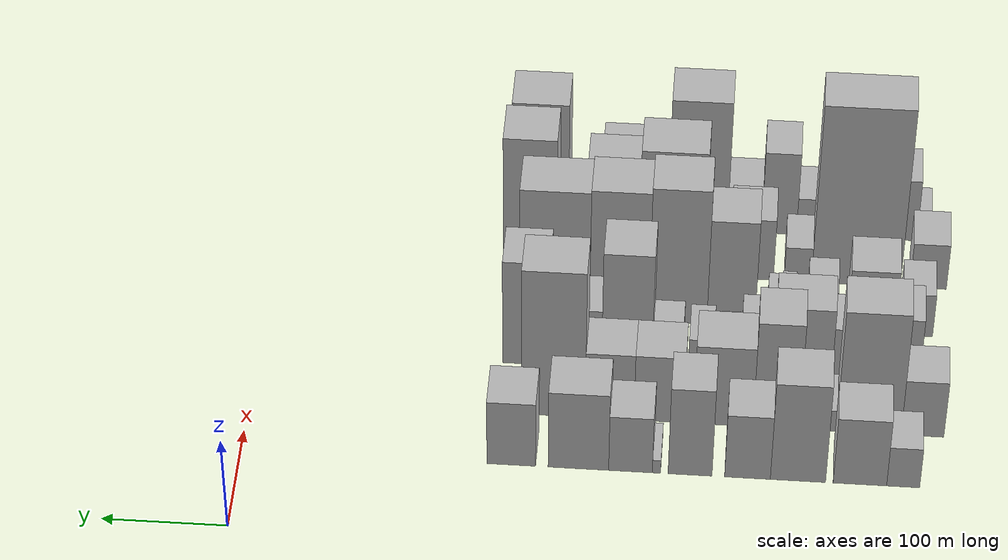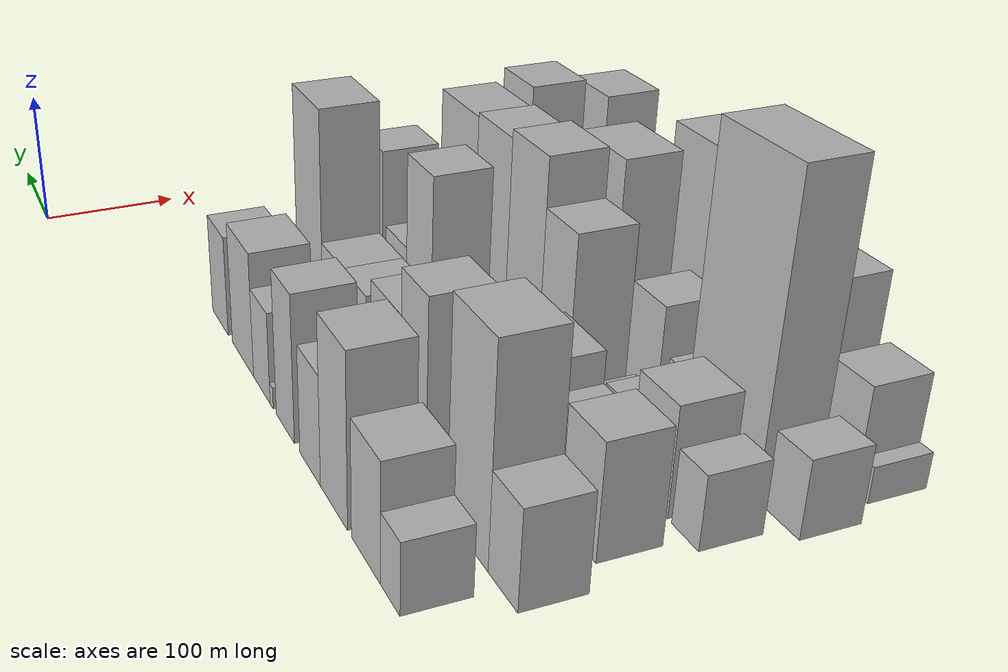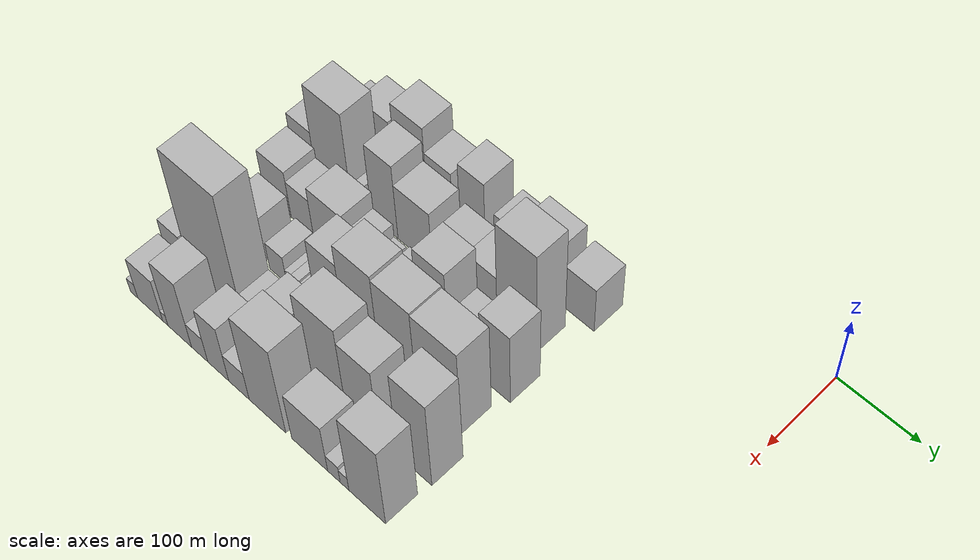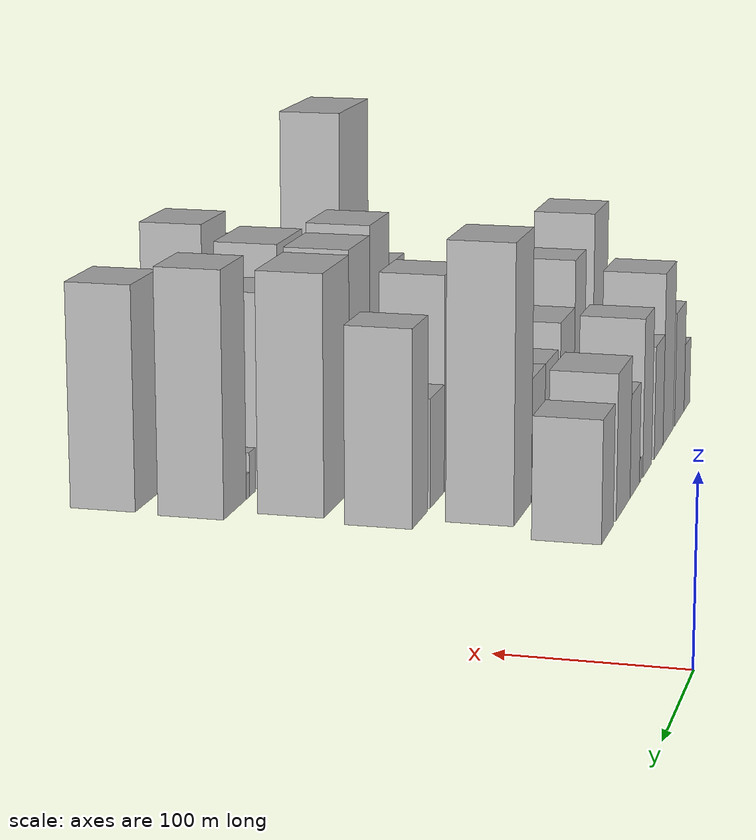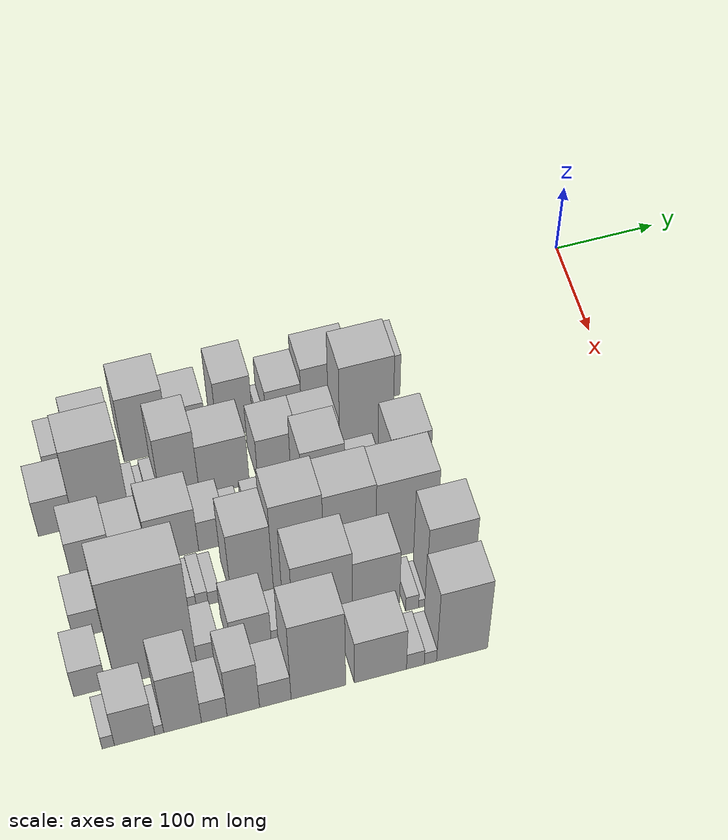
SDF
<sdf version="1.6">
 <world name="default">
  <model name="building_11">
   <static>1</static>
   <pose>100.0000 -527.0309 0 0.000000 0.000000 0.000000</pose>
   <link name="link">
    <pose>0 0 22.50 0 0 0</pose>
    <collision name="collision"><geometry><box><size>40.0000 26.0288 45.0000</size></box></geometry></collision>
    <visual name="visual">
     <cast_shadows>0</cast_shadows>
     <geometry><box><size>40.0000 26.0288 45.0000</size></box></geometry>
     <material>
      <script>
       <uri>model://HANNAS_wall/materials/scripts</uri>
       <uri>model://HANNAS_wall/materials/textures</uri>
       <name>vrc/HANNAS_wall</name>
      </script>
     </material>
    </visual>
   </link>
  </model>
  <model name="building_12">
   <static>1</static>
   <pose>100.0000 -492.8909 0 0.000000 0.000000 0.000000</pose>
   <link name="link">
    <pose>0 0 37.50 0 0 0</pose>
    <collision name="collision"><geometry><box><size>40.0000 42.2512 75.0000</size></box></geometry></collision>
    <visual name="visual">
     <cast_shadows>0</cast_shadows>
     <geometry><box><size>40.0000 42.2512 75.0000</size></box></geometry>
     <material>
      <script>
       <uri>model://HANNAS_wall/materials/scripts</uri>
       <uri>model://HANNAS_wall/materials/textures</uri>
       <name>vrc/HANNAS_wall</name>
      </script>
     </material>
    </visual>
   </link>
  </model>
  <model name="building_13">
   <static>1</static>
   <pose>100.0000 -443.9070 0 0.000000 0.000000 0.000000</pose>
   <link name="link">
    <pose>0 0 55.50 0 0 0</pose>
    <collision name="collision"><geometry><box><size>40.0000 43.7164 111.0000</size></box></geometry></collision>
    <visual name="visual">
     <cast_shadows>0</cast_shadows>
     <geometry><box><size>40.0000 43.7164 111.0000</size></box></geometry>
     <material>
      <script>
       <uri>model://HANNAS_wall/materials/scripts</uri>
       <uri>model://HANNAS_wall/materials/textures</uri>
       <name>vrc/HANNAS_wall</name>
      </script>
     </material>
    </visual>
   </link>
  </model>
  <model name="building_14">
   <static>1</static>
   <pose>100.0000 -403.9635 0 0.000000 0.000000 0.000000</pose>
   <link name="link">
    <pose>0 0 36.00 0 0 0</pose>
    <collision name="collision"><geometry><box><size>40.0000 36.1706 72.0000</size></box></geometry></collision>
    <visual name="visual">
     <cast_shadows>0</cast_shadows>
     <geometry><box><size>40.0000 36.1706 72.0000</size></box></geometry>
     <material>
      <script>
       <uri>model://HANNAS_wall/materials/scripts</uri>
       <uri>model://HANNAS_wall/materials/textures</uri>
       <name>vrc/HANNAS_wall</name>
      </script>
     </material>
    </visual>
   </link>
  </model>
  <model name="building_15">
   <static>1</static>
   <pose>100.0000 -358.4672 0 0.000000 0.000000 0.000000</pose>
   <link name="link">
    <pose>0 0 49.50 0 0 0</pose>
    <collision name="collision"><geometry><box><size>40.0000 34.8221 99.0000</size></box></geometry></collision>
    <visual name="visual">
     <cast_shadows>0</cast_shadows>
     <geometry><box><size>40.0000 34.8221 99.0000</size></box></geometry>
     <material>
      <script>
       <uri>model://HANNAS_wall/materials/scripts</uri>
       <uri>model://HANNAS_wall/materials/textures</uri>
       <name>vrc/HANNAS_wall</name>
      </script>
     </material>
    </visual>
   </link>
  </model>
  <model name="building_16">
   <static>1</static>
   <pose>100.0000 -331.7835 0 0.000000 0.000000 0.000000</pose>
   <link name="link">
    <pose>0 0 7.50 0 0 0</pose>
    <collision name="collision"><geometry><box><size>40.0000 6.5454 15.0000</size></box></geometry></collision>
    <visual name="visual">
     <cast_shadows>0</cast_shadows>
     <geometry><box><size>40.0000 6.5454 15.0000</size></box></geometry>
     <material>
      <script>
       <uri>model://HANNAS_wall/materials/scripts</uri>
       <uri>model://HANNAS_wall/materials/textures</uri>
       <name>vrc/HANNAS_wall</name>
      </script>
     </material>
    </visual>
   </link>
  </model>
  <model name="building_17">
   <static>1</static>
   <pose>100.0000 -311.1654 0 0.000000 0.000000 0.000000</pose>
   <link name="link">
    <pose>0 0 31.50 0 0 0</pose>
    <collision name="collision"><geometry><box><size>40.0000 34.6909 63.0000</size></box></geometry></collision>
    <visual name="visual">
     <cast_shadows>0</cast_shadows>
     <geometry><box><size>40.0000 34.6909 63.0000</size></box></geometry>
     <material>
      <script>
       <uri>model://HANNAS_wall/materials/scripts</uri>
       <uri>model://HANNAS_wall/materials/textures</uri>
       <name>vrc/HANNAS_wall</name>
      </script>
     </material>
    </visual>
   </link>
  </model>
  <model name="building_18">
   <static>1</static>
   <pose>100.0000 -269.7449 0 0.000000 0.000000 0.000000</pose>
   <link name="link">
    <pose>0 0 43.50 0 0 0</pose>
    <collision name="collision"><geometry><box><size>40.0000 48.1501 87.0000</size></box></geometry></collision>
    <visual name="visual">
     <cast_shadows>0</cast_shadows>
     <geometry><box><size>40.0000 48.1501 87.0000</size></box></geometry>
     <material>
      <script>
       <uri>model://HANNAS_wall/materials/scripts</uri>
       <uri>model://HANNAS_wall/materials/textures</uri>
       <name>vrc/HANNAS_wall</name>
      </script>
     </material>
    </visual>
   </link>
  </model>
  <model name="building_19">
   <static>1</static>
   <pose>100.0000 -216.3100 0 0.000000 0.000000 0.000000</pose>
   <link name="link">
    <pose>0 0 36.00 0 0 0</pose>
    <collision name="collision"><geometry><box><size>40.0000 38.7197 72.0000</size></box></geometry></collision>
    <visual name="visual">
     <cast_shadows>0</cast_shadows>
     <geometry><box><size>40.0000 38.7197 72.0000</size></box></geometry>
     <material>
      <script>
       <uri>model://HANNAS_wall/materials/scripts</uri>
       <uri>model://HANNAS_wall/materials/textures</uri>
       <name>vrc/HANNAS_wall</name>
      </script>
     </material>
    </visual>
   </link>
  </model>
  <model name="building_64">
   <static>1</static>
   <pose>155.0000 -542.1429 0 0.000000 0.000000 0.000000</pose>
   <link name="link">
    <pose>0 0 31.50 0 0 0</pose>
    <collision name="collision"><geometry><box><size>40.0000 34.1068 63.0000</size></box></geometry></collision>
    <visual name="visual">
     <cast_shadows>0</cast_shadows>
     <geometry><box><size>40.0000 34.1068 63.0000</size></box></geometry>
     <material>
      <script>
       <uri>model://HANNAS_wall/materials/scripts</uri>
       <uri>model://HANNAS_wall/materials/textures</uri>
       <name>vrc/HANNAS_wall</name>
      </script>
     </material>
    </visual>
   </link>
  </model>
  <model name="building_65">
   <static>1</static>
   <pose>155.0000 -499.2032 0 0.000000 0.000000 0.000000</pose>
   <link name="link">
    <pose>0 0 69.00 0 0 0</pose>
    <collision name="collision"><geometry><box><size>40.0000 51.7726 138.0000</size></box></geometry></collision>
    <visual name="visual">
     <cast_shadows>0</cast_shadows>
     <geometry><box><size>40.0000 51.7726 138.0000</size></box></geometry>
     <material>
      <script>
       <uri>model://HANNAS_wall/materials/scripts</uri>
       <uri>model://HANNAS_wall/materials/textures</uri>
       <name>vrc/HANNAS_wall</name>
      </script>
     </material>
    </visual>
   </link>
  </model>
  <model name="building_66">
   <static>1</static>
   <pose>155.0000 -467.5959 0 0.000000 0.000000 0.000000</pose>
   <link name="link">
    <pose>0 0 12.00 0 0 0</pose>
    <collision name="collision"><geometry><box><size>40.0000 11.4419 24.0000</size></box></geometry></collision>
    <visual name="visual">
     <cast_shadows>0</cast_shadows>
     <geometry><box><size>40.0000 11.4419 24.0000</size></box></geometry>
     <material>
      <script>
       <uri>model://HANNAS_wall/materials/scripts</uri>
       <uri>model://HANNAS_wall/materials/textures</uri>
       <name>vrc/HANNAS_wall</name>
      </script>
     </material>
    </visual>
   </link>
  </model>
  <model name="building_67">
   <static>1</static>
   <pose>155.0000 -458.2778 0 0.000000 0.000000 0.000000</pose>
   <link name="link">
    <pose>0 0 7.50 0 0 0</pose>
    <collision name="collision"><geometry><box><size>40.0000 7.1944 15.0000</size></box></geometry></collision>
    <visual name="visual">
     <cast_shadows>0</cast_shadows>
     <geometry><box><size>40.0000 7.1944 15.0000</size></box></geometry>
     <material>
      <script>
       <uri>model://HANNAS_wall/materials/scripts</uri>
       <uri>model://HANNAS_wall/materials/textures</uri>
       <name>vrc/HANNAS_wall</name>
      </script>
     </material>
    </visual>
   </link>
  </model>
  <model name="building_68">
   <static>1</static>
   <pose>155.0000 -449.0482 0 0.000000 0.000000 0.000000</pose>
   <link name="link">
    <pose>0 0 12.00 0 0 0</pose>
    <collision name="collision"><geometry><box><size>40.0000 11.2648 24.0000</size></box></geometry></collision>
    <visual name="visual">
     <cast_shadows>0</cast_shadows>
     <geometry><box><size>40.0000 11.2648 24.0000</size></box></geometry>
     <material>
      <script>
       <uri>model://HANNAS_wall/materials/scripts</uri>
       <uri>model://HANNAS_wall/materials/textures</uri>
       <name>vrc/HANNAS_wall</name>
      </script>
     </material>
    </visual>
   </link>
  </model>
  <model name="building_69">
   <static>1</static>
   <pose>155.0000 -424.9394 0 0.000000 0.000000 0.000000</pose>
   <link name="link">
    <pose>0 0 60.00 0 0 0</pose>
    <collision name="collision"><geometry><box><size>40.0000 36.9528 120.0000</size></box></geometry></collision>
    <visual name="visual">
     <cast_shadows>0</cast_shadows>
     <geometry><box><size>40.0000 36.9528 120.0000</size></box></geometry>
     <material>
      <script>
       <uri>model://HANNAS_wall/materials/scripts</uri>
       <uri>model://HANNAS_wall/materials/textures</uri>
       <name>vrc/HANNAS_wall</name>
      </script>
     </material>
    </visual>
   </link>
  </model>
  <model name="building_70">
   <static>1</static>
   <pose>155.0000 -382.6719 0 0.000000 0.000000 0.000000</pose>
   <link name="link">
    <pose>0 0 45.00 0 0 0</pose>
    <collision name="collision"><geometry><box><size>40.0000 47.5822 90.0000</size></box></geometry></collision>
    <visual name="visual">
     <cast_shadows>0</cast_shadows>
     <geometry><box><size>40.0000 47.5822 90.0000</size></box></geometry>
     <material>
      <script>
       <uri>model://HANNAS_wall/materials/scripts</uri>
       <uri>model://HANNAS_wall/materials/textures</uri>
       <name>vrc/HANNAS_wall</name>
      </script>
     </material>
    </visual>
   </link>
  </model>
  <model name="building_71">
   <static>1</static>
   <pose>155.0000 -330.9458 0 0.000000 0.000000 0.000000</pose>
   <link name="link">
    <pose>0 0 37.50 0 0 0</pose>
    <collision name="collision"><geometry><box><size>40.0000 39.8699 75.0000</size></box></geometry></collision>
    <visual name="visual">
     <cast_shadows>0</cast_shadows>
     <geometry><box><size>40.0000 39.8699 75.0000</size></box></geometry>
     <material>
      <script>
       <uri>model://HANNAS_wall/materials/scripts</uri>
       <uri>model://HANNAS_wall/materials/textures</uri>
       <name>vrc/HANNAS_wall</name>
      </script>
     </material>
    </visual>
   </link>
  </model>
  <model name="building_72">
   <static>1</static>
   <pose>155.0000 -291.3191 0 0.000000 0.000000 0.000000</pose>
   <link name="link">
    <pose>0 0 37.50 0 0 0</pose>
    <collision name="collision"><geometry><box><size>40.0000 39.3836 75.0000</size></box></geometry></collision>
    <visual name="visual">
     <cast_shadows>0</cast_shadows>
     <geometry><box><size>40.0000 39.3836 75.0000</size></box></geometry>
     <material>
      <script>
       <uri>model://HANNAS_wall/materials/scripts</uri>
       <uri>model://HANNAS_wall/materials/textures</uri>
       <name>vrc/HANNAS_wall</name>
      </script>
     </material>
    </visual>
   </link>
  </model>
  <model name="building_73">
   <static>1</static>
   <pose>155.0000 -246.0139 0 0.000000 0.000000 0.000000</pose>
   <link name="link">
    <pose>0 0 82.50 0 0 0</pose>
    <collision name="collision"><geometry><box><size>40.0000 51.2267 165.0000</size></box></geometry></collision>
    <visual name="visual">
     <cast_shadows>0</cast_shadows>
     <geometry><box><size>40.0000 51.2267 165.0000</size></box></geometry>
     <material>
      <script>
       <uri>model://HANNAS_wall/materials/scripts</uri>
       <uri>model://HANNAS_wall/materials/textures</uri>
       <name>vrc/HANNAS_wall</name>
      </script>
     </material>
    </visual>
   </link>
  </model>
  <model name="building_116">
   <static>1</static>
   <pose>210.0000 -519.8857 0 0.000000 0.000000 0.000000</pose>
   <link name="link">
    <pose>0 0 37.50 0 0 0</pose>
    <collision name="collision"><geometry><box><size>40.0000 38.7851 75.0000</size></box></geometry></collision>
    <visual name="visual">
     <cast_shadows>0</cast_shadows>
     <geometry><box><size>40.0000 38.7851 75.0000</size></box></geometry>
     <material>
      <script>
       <uri>model://HANNAS_wall/materials/scripts</uri>
       <uri>model://HANNAS_wall/materials/textures</uri>
       <name>vrc/HANNAS_wall</name>
      </script>
     </material>
    </visual>
   </link>
  </model>
  <model name="building_117">
   <static>1</static>
   <pose>210.0000 -484.4606 0 0.000000 0.000000 0.000000</pose>
   <link name="link">
    <pose>0 0 30.00 0 0 0</pose>
    <collision name="collision"><geometry><box><size>40.0000 32.0651 60.0000</size></box></geometry></collision>
    <visual name="visual">
     <cast_shadows>0</cast_shadows>
     <geometry><box><size>40.0000 32.0651 60.0000</size></box></geometry>
     <material>
      <script>
       <uri>model://HANNAS_wall/materials/scripts</uri>
       <uri>model://HANNAS_wall/materials/textures</uri>
       <name>vrc/HANNAS_wall</name>
      </script>
     </material>
    </visual>
   </link>
  </model>
  <model name="building_118">
   <static>1</static>
   <pose>210.0000 -444.7118 0 0.000000 0.000000 0.000000</pose>
   <link name="link">
    <pose>0 0 40.50 0 0 0</pose>
    <collision name="collision"><geometry><box><size>40.0000 47.4326 81.0000</size></box></geometry></collision>
    <visual name="visual">
     <cast_shadows>0</cast_shadows>
     <geometry><box><size>40.0000 47.4326 81.0000</size></box></geometry>
     <material>
      <script>
       <uri>model://HANNAS_wall/materials/scripts</uri>
       <uri>model://HANNAS_wall/materials/textures</uri>
       <name>vrc/HANNAS_wall</name>
      </script>
     </material>
    </visual>
   </link>
  </model>
  <model name="building_119">
   <static>1</static>
   <pose>210.0000 -407.4408 0 0.000000 0.000000 0.000000</pose>
   <link name="link">
    <pose>0 0 27.00 0 0 0</pose>
    <collision name="collision"><geometry><box><size>40.0000 27.1093 54.0000</size></box></geometry></collision>
    <visual name="visual">
     <cast_shadows>0</cast_shadows>
     <geometry><box><size>40.0000 27.1093 54.0000</size></box></geometry>
     <material>
      <script>
       <uri>model://HANNAS_wall/materials/scripts</uri>
       <uri>model://HANNAS_wall/materials/textures</uri>
       <name>vrc/HANNAS_wall</name>
      </script>
     </material>
    </visual>
   </link>
  </model>
  <model name="building_120">
   <static>1</static>
   <pose>210.0000 -385.4485 0 0.000000 0.000000 0.000000</pose>
   <link name="link">
    <pose>0 0 16.50 0 0 0</pose>
    <collision name="collision"><geometry><box><size>40.0000 16.8754 33.0000</size></box></geometry></collision>
    <visual name="visual">
     <cast_shadows>0</cast_shadows>
     <geometry><box><size>40.0000 16.8754 33.0000</size></box></geometry>
     <material>
      <script>
       <uri>model://HANNAS_wall/materials/scripts</uri>
       <uri>model://HANNAS_wall/materials/textures</uri>
       <name>vrc/HANNAS_wall</name>
      </script>
     </material>
    </visual>
   </link>
  </model>
  <model name="building_121">
   <static>1</static>
   <pose>210.0000 -362.0069 0 0.000000 0.000000 0.000000</pose>
   <link name="link">
    <pose>0 0 19.50 0 0 0</pose>
    <collision name="collision"><geometry><box><size>40.0000 20.0077 39.0000</size></box></geometry></collision>
    <visual name="visual">
     <cast_shadows>0</cast_shadows>
     <geometry><box><size>40.0000 20.0077 39.0000</size></box></geometry>
     <material>
      <script>
       <uri>model://HANNAS_wall/materials/scripts</uri>
       <uri>model://HANNAS_wall/materials/textures</uri>
       <name>vrc/HANNAS_wall</name>
      </script>
     </material>
    </visual>
   </link>
  </model>
  <model name="building_122">
   <static>1</static>
   <pose>210.0000 -334.7473 0 0.000000 0.000000 0.000000</pose>
   <link name="link">
    <pose>0 0 21.00 0 0 0</pose>
    <collision name="collision"><geometry><box><size>40.0000 24.5114 42.0000</size></box></geometry></collision>
    <visual name="visual">
     <cast_shadows>0</cast_shadows>
     <geometry><box><size>40.0000 24.5114 42.0000</size></box></geometry>
     <material>
      <script>
       <uri>model://HANNAS_wall/materials/scripts</uri>
       <uri>model://HANNAS_wall/materials/textures</uri>
       <name>vrc/HANNAS_wall</name>
      </script>
     </material>
    </visual>
   </link>
  </model>
  <model name="building_123">
   <static>1</static>
   <pose>210.0000 -302.0046 0 0.000000 0.000000 0.000000</pose>
   <link name="link">
    <pose>0 0 66.00 0 0 0</pose>
    <collision name="collision"><geometry><box><size>40.0000 40.9741 132.0000</size></box></geometry></collision>
    <visual name="visual">
     <cast_shadows>0</cast_shadows>
     <geometry><box><size>40.0000 40.9741 132.0000</size></box></geometry>
     <material>
      <script>
       <uri>model://HANNAS_wall/materials/scripts</uri>
       <uri>model://HANNAS_wall/materials/textures</uri>
       <name>vrc/HANNAS_wall</name>
      </script>
     </material>
    </visual>
   </link>
  </model>
  <model name="building_124">
   <static>1</static>
   <pose>210.0000 -263.2662 0 0.000000 0.000000 0.000000</pose>
   <link name="link">
    <pose>0 0 33.00 0 0 0</pose>
    <collision name="collision"><geometry><box><size>40.0000 36.5026 66.0000</size></box></geometry></collision>
    <visual name="visual">
     <cast_shadows>0</cast_shadows>
     <geometry><box><size>40.0000 36.5026 66.0000</size></box></geometry>
     <material>
      <script>
       <uri>model://HANNAS_wall/materials/scripts</uri>
       <uri>model://HANNAS_wall/materials/textures</uri>
       <name>vrc/HANNAS_wall</name>
      </script>
     </material>
    </visual>
   </link>
  </model>
  <model name="building_125">
   <static>1</static>
   <pose>210.0000 -219.9818 0 0.000000 0.000000 0.000000</pose>
   <link name="link">
    <pose>0 0 58.50 0 0 0</pose>
    <collision name="collision"><geometry><box><size>40.0000 38.0663 117.0000</size></box></geometry></collision>
    <visual name="visual">
     <cast_shadows>0</cast_shadows>
     <geometry><box><size>40.0000 38.0663 117.0000</size></box></geometry>
     <material>
      <script>
       <uri>model://HANNAS_wall/materials/scripts</uri>
       <uri>model://HANNAS_wall/materials/textures</uri>
       <name>vrc/HANNAS_wall</name>
      </script>
     </material>
    </visual>
   </link>
  </model>
  <model name="building_164">
   <static>1</static>
   <pose>265.0000 -537.0578 0 0.000000 0.000000 0.000000</pose>
   <link name="link">
    <pose>0 0 24.00 0 0 0</pose>
    <collision name="collision"><geometry><box><size>40.0000 26.4719 48.0000</size></box></geometry></collision>
    <visual name="visual">
     <cast_shadows>0</cast_shadows>
     <geometry><box><size>40.0000 26.4719 48.0000</size></box></geometry>
     <material>
      <script>
       <uri>model://HANNAS_wall/materials/scripts</uri>
       <uri>model://HANNAS_wall/materials/textures</uri>
       <name>vrc/HANNAS_wall</name>
      </script>
     </material>
    </visual>
   </link>
  </model>
  <model name="building_165">
   <static>1</static>
   <pose>265.0000 -499.9683 0 0.000000 0.000000 0.000000</pose>
   <link name="link">
    <pose>0 0 36.00 0 0 0</pose>
    <collision name="collision"><geometry><box><size>40.0000 39.7071 72.0000</size></box></geometry></collision>
    <visual name="visual">
     <cast_shadows>0</cast_shadows>
     <geometry><box><size>40.0000 39.7071 72.0000</size></box></geometry>
     <material>
      <script>
       <uri>model://HANNAS_wall/materials/scripts</uri>
       <uri>model://HANNAS_wall/materials/textures</uri>
       <name>vrc/HANNAS_wall</name>
      </script>
     </material>
    </visual>
   </link>
  </model>
  <model name="building_166">
   <static>1</static>
   <pose>265.0000 -458.9181 0 0.000000 0.000000 0.000000</pose>
   <link name="link">
    <pose>0 0 22.50 0 0 0</pose>
    <collision name="collision"><geometry><box><size>40.0000 24.3934 45.0000</size></box></geometry></collision>
    <visual name="visual">
     <cast_shadows>0</cast_shadows>
     <geometry><box><size>40.0000 24.3934 45.0000</size></box></geometry>
     <material>
      <script>
       <uri>model://HANNAS_wall/materials/scripts</uri>
       <uri>model://HANNAS_wall/materials/textures</uri>
       <name>vrc/HANNAS_wall</name>
      </script>
     </material>
    </visual>
   </link>
  </model>
  <model name="building_167">
   <static>1</static>
   <pose>265.0000 -441.7846 0 0.000000 0.000000 0.000000</pose>
   <link name="link">
    <pose>0 0 12.00 0 0 0</pose>
    <collision name="collision"><geometry><box><size>40.0000 9.8736 24.0000</size></box></geometry></collision>
    <visual name="visual">
     <cast_shadows>0</cast_shadows>
     <geometry><box><size>40.0000 9.8736 24.0000</size></box></geometry>
     <material>
      <script>
       <uri>model://HANNAS_wall/materials/scripts</uri>
       <uri>model://HANNAS_wall/materials/textures</uri>
       <name>vrc/HANNAS_wall</name>
      </script>
     </material>
    </visual>
   </link>
  </model>
  <model name="building_168">
   <static>1</static>
   <pose>265.0000 -431.2583 0 0.000000 0.000000 0.000000</pose>
   <link name="link">
    <pose>0 0 13.50 0 0 0</pose>
    <collision name="collision"><geometry><box><size>40.0000 11.1790 27.0000</size></box></geometry></collision>
    <visual name="visual">
     <cast_shadows>0</cast_shadows>
     <geometry><box><size>40.0000 11.1790 27.0000</size></box></geometry>
     <material>
      <script>
       <uri>model://HANNAS_wall/materials/scripts</uri>
       <uri>model://HANNAS_wall/materials/textures</uri>
       <name>vrc/HANNAS_wall</name>
      </script>
     </material>
    </visual>
   </link>
  </model>
  <model name="building_169">
   <static>1</static>
   <pose>265.0000 -420.0051 0 0.000000 0.000000 0.000000</pose>
   <link name="link">
    <pose>0 0 12.00 0 0 0</pose>
    <collision name="collision"><geometry><box><size>40.0000 11.3274 24.0000</size></box></geometry></collision>
    <visual name="visual">
     <cast_shadows>0</cast_shadows>
     <geometry><box><size>40.0000 11.3274 24.0000</size></box></geometry>
     <material>
      <script>
       <uri>model://HANNAS_wall/materials/scripts</uri>
       <uri>model://HANNAS_wall/materials/textures</uri>
       <name>vrc/HANNAS_wall</name>
      </script>
     </material>
    </visual>
   </link>
  </model>
  <model name="building_170">
   <static>1</static>
   <pose>265.0000 -384.6492 0 0.000000 0.000000 0.000000</pose>
   <link name="link">
    <pose>0 0 60.00 0 0 0</pose>
    <collision name="collision"><geometry><box><size>40.0000 39.3845 120.0000</size></box></geometry></collision>
    <visual name="visual">
     <cast_shadows>0</cast_shadows>
     <geometry><box><size>40.0000 39.3845 120.0000</size></box></geometry>
     <material>
      <script>
       <uri>model://HANNAS_wall/materials/scripts</uri>
       <uri>model://HANNAS_wall/materials/textures</uri>
       <name>vrc/HANNAS_wall</name>
      </script>
     </material>
    </visual>
   </link>
  </model>
  <model name="building_171">
   <static>1</static>
   <pose>265.0000 -341.0384 0 0.000000 0.000000 0.000000</pose>
   <link name="link">
    <pose>0 0 76.50 0 0 0</pose>
    <collision name="collision"><geometry><box><size>40.0000 47.8370 153.0000</size></box></geometry></collision>
    <visual name="visual">
     <cast_shadows>0</cast_shadows>
     <geometry><box><size>40.0000 47.8370 153.0000</size></box></geometry>
     <material>
      <script>
       <uri>model://HANNAS_wall/materials/scripts</uri>
       <uri>model://HANNAS_wall/materials/textures</uri>
       <name>vrc/HANNAS_wall</name>
      </script>
     </material>
    </visual>
   </link>
  </model>
  <model name="building_172">
   <static>1</static>
   <pose>265.0000 -292.7248 0 0.000000 0.000000 0.000000</pose>
   <link name="link">
    <pose>0 0 73.50 0 0 0</pose>
    <collision name="collision"><geometry><box><size>40.0000 48.7903 147.0000</size></box></geometry></collision>
    <visual name="visual">
     <cast_shadows>0</cast_shadows>
     <geometry><box><size>40.0000 48.7903 147.0000</size></box></geometry>
     <material>
      <script>
       <uri>model://HANNAS_wall/materials/scripts</uri>
       <uri>model://HANNAS_wall/materials/textures</uri>
       <name>vrc/HANNAS_wall</name>
      </script>
     </material>
    </visual>
   </link>
  </model>
  <model name="building_173">
   <static>1</static>
   <pose>265.0000 -239.5447 0 0.000000 0.000000 0.000000</pose>
   <link name="link">
    <pose>0 0 72.00 0 0 0</pose>
    <collision name="collision"><geometry><box><size>40.0000 57.5699 144.0000</size></box></geometry></collision>
    <visual name="visual">
     <cast_shadows>0</cast_shadows>
     <geometry><box><size>40.0000 57.5699 144.0000</size></box></geometry>
     <material>
      <script>
       <uri>model://HANNAS_wall/materials/scripts</uri>
       <uri>model://HANNAS_wall/materials/textures</uri>
       <name>vrc/HANNAS_wall</name>
      </script>
     </material>
    </visual>
   </link>
  </model>
  <model name="building_217">
   <static>1</static>
   <pose>320.0000 -546.7113 0 0.000000 0.000000 0.000000</pose>
   <link name="link">
    <pose>0 0 25.50 0 0 0</pose>
    <collision name="collision"><geometry><box><size>40.0000 30.1003 51.0000</size></box></geometry></collision>
    <visual name="visual">
     <cast_shadows>0</cast_shadows>
     <geometry><box><size>40.0000 30.1003 51.0000</size></box></geometry>
     <material>
      <script>
       <uri>model://HANNAS_wall/materials/scripts</uri>
       <uri>model://HANNAS_wall/materials/textures</uri>
       <name>vrc/HANNAS_wall</name>
      </script>
     </material>
    </visual>
   </link>
  </model>
  <model name="building_218">
   <static>1</static>
   <pose>320.0000 -486.7060 0 0.000000 0.000000 0.000000</pose>
   <link name="link">
    <pose>0 0 100.50 0 0 0</pose>
    <collision name="collision"><geometry><box><size>40.0000 73.9104 201.0000</size></box></geometry></collision>
    <visual name="visual">
     <cast_shadows>0</cast_shadows>
     <geometry><box><size>40.0000 73.9104 201.0000</size></box></geometry>
     <material>
      <script>
       <uri>model://HANNAS_wall/materials/scripts</uri>
       <uri>model://HANNAS_wall/materials/textures</uri>
       <name>vrc/HANNAS_wall</name>
      </script>
     </material>
    </visual>
   </link>
  </model>
  <model name="building_219">
   <static>1</static>
   <pose>320.0000 -438.4610 0 0.000000 0.000000 0.000000</pose>
   <link name="link">
    <pose>0 0 19.50 0 0 0</pose>
    <collision name="collision"><geometry><box><size>40.0000 22.5795 39.0000</size></box></geometry></collision>
    <visual name="visual">
     <cast_shadows>0</cast_shadows>
     <geometry><box><size>40.0000 22.5795 39.0000</size></box></geometry>
     <material>
      <script>
       <uri>model://HANNAS_wall/materials/scripts</uri>
       <uri>model://HANNAS_wall/materials/textures</uri>
       <name>vrc/HANNAS_wall</name>
      </script>
     </material>
    </visual>
   </link>
  </model>
  <model name="building_220">
   <static>1</static>
   <pose>320.0000 -399.6013 0 0.000000 0.000000 0.000000</pose>
   <link name="link">
    <pose>0 0 34.50 0 0 0</pose>
    <collision name="collision"><geometry><box><size>40.0000 37.1399 69.0000</size></box></geometry></collision>
    <visual name="visual">
     <cast_shadows>0</cast_shadows>
     <geometry><box><size>40.0000 37.1399 69.0000</size></box></geometry>
     <material>
      <script>
       <uri>model://HANNAS_wall/materials/scripts</uri>
       <uri>model://HANNAS_wall/materials/textures</uri>
       <name>vrc/HANNAS_wall</name>
      </script>
     </material>
    </visual>
   </link>
  </model>
  <model name="building_221">
   <static>1</static>
   <pose>320.0000 -372.7929 0 0.000000 0.000000 0.000000</pose>
   <link name="link">
    <pose>0 0 15.00 0 0 0</pose>
    <collision name="collision"><geometry><box><size>40.0000 16.4769 30.0000</size></box></geometry></collision>
    <visual name="visual">
     <cast_shadows>0</cast_shadows>
     <geometry><box><size>40.0000 16.4769 30.0000</size></box></geometry>
     <material>
      <script>
       <uri>model://HANNAS_wall/materials/scripts</uri>
       <uri>model://HANNAS_wall/materials/textures</uri>
       <name>vrc/HANNAS_wall</name>
      </script>
     </material>
    </visual>
   </link>
  </model>
  <model name="building_222">
   <static>1</static>
   <pose>320.0000 -333.1534 0 0.000000 0.000000 0.000000</pose>
   <link name="link">
    <pose>0 0 70.50 0 0 0</pose>
    <collision name="collision"><geometry><box><size>40.0000 54.8020 141.0000</size></box></geometry></collision>
    <visual name="visual">
     <cast_shadows>0</cast_shadows>
     <geometry><box><size>40.0000 54.8020 141.0000</size></box></geometry>
     <material>
      <script>
       <uri>model://HANNAS_wall/materials/scripts</uri>
       <uri>model://HANNAS_wall/materials/textures</uri>
       <name>vrc/HANNAS_wall</name>
      </script>
     </material>
    </visual>
   </link>
  </model>
  <model name="building_223">
   <static>1</static>
   <pose>320.0000 -283.9857 0 0.000000 0.000000 0.000000</pose>
   <link name="link">
    <pose>0 0 60.00 0 0 0</pose>
    <collision name="collision"><geometry><box><size>40.0000 43.5335 120.0000</size></box></geometry></collision>
    <visual name="visual">
     <cast_shadows>0</cast_shadows>
     <geometry><box><size>40.0000 43.5335 120.0000</size></box></geometry>
     <material>
      <script>
       <uri>model://HANNAS_wall/materials/scripts</uri>
       <uri>model://HANNAS_wall/materials/textures</uri>
       <name>vrc/HANNAS_wall</name>
      </script>
     </material>
    </visual>
   </link>
  </model>
  <model name="building_224">
   <static>1</static>
   <pose>320.0000 -250.1082 0 0.000000 0.000000 0.000000</pose>
   <link name="link">
    <pose>0 0 13.50 0 0 0</pose>
    <collision name="collision"><geometry><box><size>40.0000 12.2214 27.0000</size></box></geometry></collision>
    <visual name="visual">
     <cast_shadows>0</cast_shadows>
     <geometry><box><size>40.0000 12.2214 27.0000</size></box></geometry>
     <material>
      <script>
       <uri>model://HANNAS_wall/materials/scripts</uri>
       <uri>model://HANNAS_wall/materials/textures</uri>
       <name>vrc/HANNAS_wall</name>
      </script>
     </material>
    </visual>
   </link>
  </model>
  <model name="building_225">
   <static>1</static>
   <pose>320.0000 -240.7088 0 0.000000 0.000000 0.000000</pose>
   <link name="link">
    <pose>0 0 7.50 0 0 0</pose>
    <collision name="collision"><geometry><box><size>40.0000 6.5774 15.0000</size></box></geometry></collision>
    <visual name="visual">
     <cast_shadows>0</cast_shadows>
     <geometry><box><size>40.0000 6.5774 15.0000</size></box></geometry>
     <material>
      <script>
       <uri>model://HANNAS_wall/materials/scripts</uri>
       <uri>model://HANNAS_wall/materials/textures</uri>
       <name>vrc/HANNAS_wall</name>
      </script>
     </material>
    </visual>
   </link>
  </model>
  <model name="building_226">
   <static>1</static>
   <pose>320.0000 -215.2263 0 0.000000 0.000000 0.000000</pose>
   <link name="link">
    <pose>0 0 73.50 0 0 0</pose>
    <collision name="collision"><geometry><box><size>40.0000 44.3877 147.0000</size></box></geometry></collision>
    <visual name="visual">
     <cast_shadows>0</cast_shadows>
     <geometry><box><size>40.0000 44.3877 147.0000</size></box></geometry>
     <material>
      <script>
       <uri>model://HANNAS_wall/materials/scripts</uri>
       <uri>model://HANNAS_wall/materials/textures</uri>
       <name>vrc/HANNAS_wall</name>
      </script>
     </material>
    </visual>
   </link>
  </model>
  <model name="building_267">
   <static>1</static>
   <pose>375.0000 -542.7838 0 0.000000 0.000000 0.000000</pose>
   <link name="link">
    <pose>0 0 12.00 0 0 0</pose>
    <collision name="collision"><geometry><box><size>40.0000 11.1250 24.0000</size></box></geometry></collision>
    <visual name="visual">
     <cast_shadows>0</cast_shadows>
     <geometry><box><size>40.0000 11.1250 24.0000</size></box></geometry>
     <material>
      <script>
       <uri>model://HANNAS_wall/materials/scripts</uri>
       <uri>model://HANNAS_wall/materials/textures</uri>
       <name>vrc/HANNAS_wall</name>
      </script>
     </material>
    </visual>
   </link>
  </model>
  <model name="building_268">
   <static>1</static>
   <pose>375.0000 -519.1240 0 0.000000 0.000000 0.000000</pose>
   <link name="link">
    <pose>0 0 34.50 0 0 0</pose>
    <collision name="collision"><geometry><box><size>40.0000 36.1945 69.0000</size></box></geometry></collision>
    <visual name="visual">
     <cast_shadows>0</cast_shadows>
     <geometry><box><size>40.0000 36.1945 69.0000</size></box></geometry>
     <material>
      <script>
       <uri>model://HANNAS_wall/materials/scripts</uri>
       <uri>model://HANNAS_wall/materials/textures</uri>
       <name>vrc/HANNAS_wall</name>
      </script>
     </material>
    </visual>
   </link>
  </model>
  <model name="building_269">
   <static>1</static>
   <pose>375.0000 -497.0691 0 0.000000 0.000000 0.000000</pose>
   <link name="link">
    <pose>0 0 9.00 0 0 0</pose>
    <collision name="collision"><geometry><box><size>40.0000 7.9153 18.0000</size></box></geometry></collision>
    <visual name="visual">
     <cast_shadows>0</cast_shadows>
     <geometry><box><size>40.0000 7.9153 18.0000</size></box></geometry>
     <material>
      <script>
       <uri>model://HANNAS_wall/materials/scripts</uri>
       <uri>model://HANNAS_wall/materials/textures</uri>
       <name>vrc/HANNAS_wall</name>
      </script>
     </material>
    </visual>
   </link>
  </model>
  <model name="building_270">
   <static>1</static>
   <pose>375.0000 -476.0994 0 0.000000 0.000000 0.000000</pose>
   <link name="link">
    <pose>0 0 55.50 0 0 0</pose>
    <collision name="collision"><geometry><box><size>40.0000 34.0241 111.0000</size></box></geometry></collision>
    <visual name="visual">
     <cast_shadows>0</cast_shadows>
     <geometry><box><size>40.0000 34.0241 111.0000</size></box></geometry>
     <material>
      <script>
       <uri>model://HANNAS_wall/materials/scripts</uri>
       <uri>model://HANNAS_wall/materials/textures</uri>
       <name>vrc/HANNAS_wall</name>
      </script>
     </material>
    </visual>
   </link>
  </model>
  <model name="building_271">
   <static>1</static>
   <pose>375.0000 -447.5292 0 0.000000 0.000000 0.000000</pose>
   <link name="link">
    <pose>0 0 21.00 0 0 0</pose>
    <collision name="collision"><geometry><box><size>40.0000 23.1162 42.0000</size></box></geometry></collision>
    <visual name="visual">
     <cast_shadows>0</cast_shadows>
     <geometry><box><size>40.0000 23.1162 42.0000</size></box></geometry>
     <material>
      <script>
       <uri>model://HANNAS_wall/materials/scripts</uri>
       <uri>model://HANNAS_wall/materials/textures</uri>
       <name>vrc/HANNAS_wall</name>
      </script>
     </material>
    </visual>
   </link>
  </model>
  <model name="building_272">
   <static>1</static>
   <pose>375.0000 -421.2011 0 0.000000 0.000000 0.000000</pose>
   <link name="link">
    <pose>0 0 46.50 0 0 0</pose>
    <collision name="collision"><geometry><box><size>40.0000 29.5400 93.0000</size></box></geometry></collision>
    <visual name="visual">
     <cast_shadows>0</cast_shadows>
     <geometry><box><size>40.0000 29.5400 93.0000</size></box></geometry>
     <material>
      <script>
       <uri>model://HANNAS_wall/materials/scripts</uri>
       <uri>model://HANNAS_wall/materials/textures</uri>
       <name>vrc/HANNAS_wall</name>
      </script>
     </material>
    </visual>
   </link>
  </model>
  <model name="building_273">
   <static>1</static>
   <pose>375.0000 -392.1035 0 0.000000 0.000000 0.000000</pose>
   <link name="link">
    <pose>0 0 24.00 0 0 0</pose>
    <collision name="collision"><geometry><box><size>40.0000 28.6552 48.0000</size></box></geometry></collision>
    <visual name="visual">
     <cast_shadows>0</cast_shadows>
     <geometry><box><size>40.0000 28.6552 48.0000</size></box></geometry>
     <material>
      <script>
       <uri>model://HANNAS_wall/materials/scripts</uri>
       <uri>model://HANNAS_wall/materials/textures</uri>
       <name>vrc/HANNAS_wall</name>
      </script>
     </material>
    </visual>
   </link>
  </model>
  <model name="building_274">
   <static>1</static>
   <pose>375.0000 -352.7440 0 0.000000 0.000000 0.000000</pose>
   <link name="link">
    <pose>0 0 73.50 0 0 0</pose>
    <collision name="collision"><geometry><box><size>40.0000 50.0638 147.0000</size></box></geometry></collision>
    <visual name="visual">
     <cast_shadows>0</cast_shadows>
     <geometry><box><size>40.0000 50.0638 147.0000</size></box></geometry>
     <material>
      <script>
       <uri>model://HANNAS_wall/materials/scripts</uri>
       <uri>model://HANNAS_wall/materials/textures</uri>
       <name>vrc/HANNAS_wall</name>
      </script>
     </material>
    </visual>
   </link>
  </model>
  <model name="building_275">
   <static>1</static>
   <pose>375.0000 -295.6610 0 0.000000 0.000000 0.000000</pose>
   <link name="link">
    <pose>0 0 40.50 0 0 0</pose>
    <collision name="collision"><geometry><box><size>40.0000 48.1022 81.0000</size></box></geometry></collision>
    <visual name="visual">
     <cast_shadows>0</cast_shadows>
     <geometry><box><size>40.0000 48.1022 81.0000</size></box></geometry>
     <material>
      <script>
       <uri>model://HANNAS_wall/materials/scripts</uri>
       <uri>model://HANNAS_wall/materials/textures</uri>
       <name>vrc/HANNAS_wall</name>
      </script>
     </material>
    </visual>
   </link>
  </model>
  <model name="building_276">
   <static>1</static>
   <pose>375.0000 -263.3847 0 0.000000 0.000000 0.000000</pose>
   <link name="link">
    <pose>0 0 15.00 0 0 0</pose>
    <collision name="collision"><geometry><box><size>40.0000 16.4503 30.0000</size></box></geometry></collision>
    <visual name="visual">
     <cast_shadows>0</cast_shadows>
     <geometry><box><size>40.0000 16.4503 30.0000</size></box></geometry>
     <material>
      <script>
       <uri>model://HANNAS_wall/materials/scripts</uri>
       <uri>model://HANNAS_wall/materials/textures</uri>
       <name>vrc/HANNAS_wall</name>
      </script>
     </material>
    </visual>
   </link>
  </model>
  <model name="building_277">
   <static>1</static>
   <pose>375.0000 -249.4324 0 0.000000 0.000000 0.000000</pose>
   <link name="link">
    <pose>0 0 12.00 0 0 0</pose>
    <collision name="collision"><geometry><box><size>40.0000 11.4542 24.0000</size></box></geometry></collision>
    <visual name="visual">
     <cast_shadows>0</cast_shadows>
     <geometry><box><size>40.0000 11.4542 24.0000</size></box></geometry>
     <material>
      <script>
       <uri>model://HANNAS_wall/materials/scripts</uri>
       <uri>model://HANNAS_wall/materials/textures</uri>
       <name>vrc/HANNAS_wall</name>
      </script>
     </material>
    </visual>
   </link>
  </model>
  <model name="building_278">
   <static>1</static>
   <pose>375.0000 -219.9138 0 0.000000 0.000000 0.000000</pose>
   <link name="link">
    <pose>0 0 67.50 0 0 0</pose>
    <collision name="collision"><geometry><box><size>40.0000 47.5831 135.0000</size></box></geometry></collision>
    <visual name="visual">
     <cast_shadows>0</cast_shadows>
     <geometry><box><size>40.0000 47.5831 135.0000</size></box></geometry>
     <material>
      <script>
       <uri>model://HANNAS_wall/materials/scripts</uri>
       <uri>model://HANNAS_wall/materials/textures</uri>
       <name>vrc/HANNAS_wall</name>
      </script>
     </material>
    </visual>
   </link>
  </model>
 </world>
</sdf>
